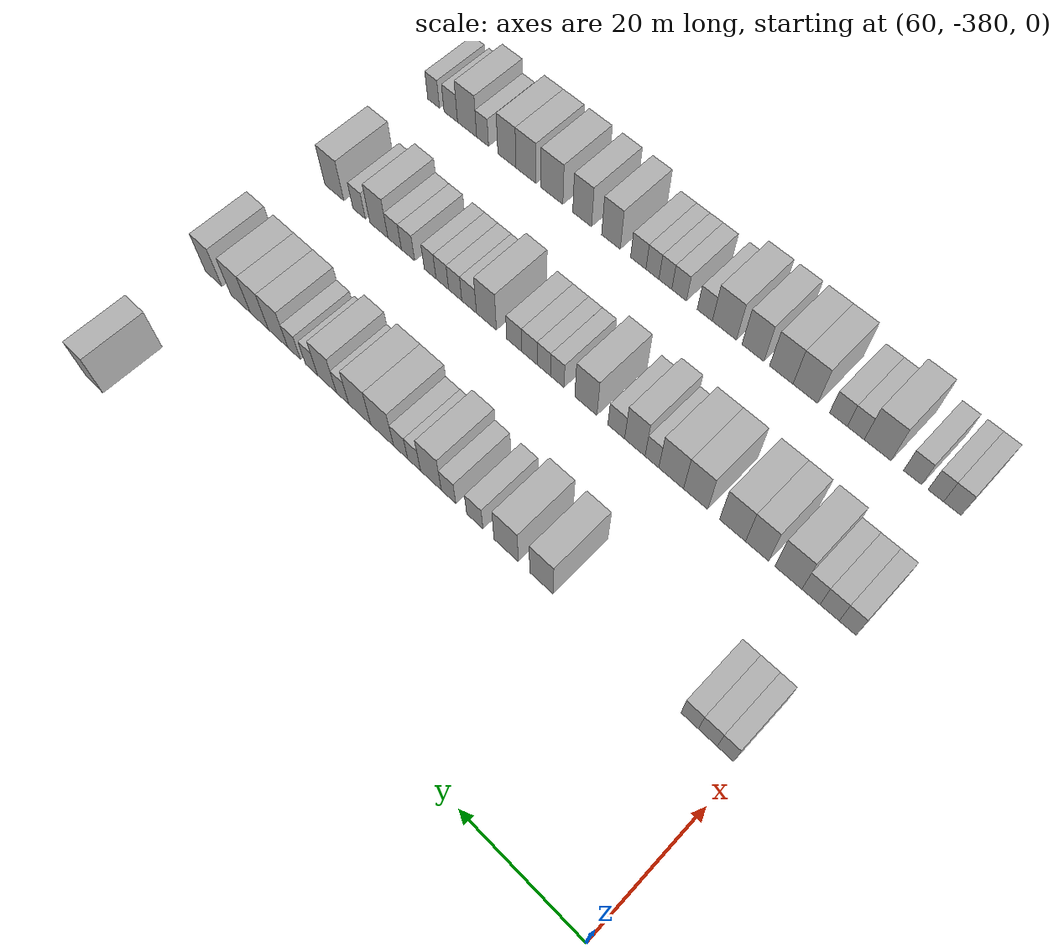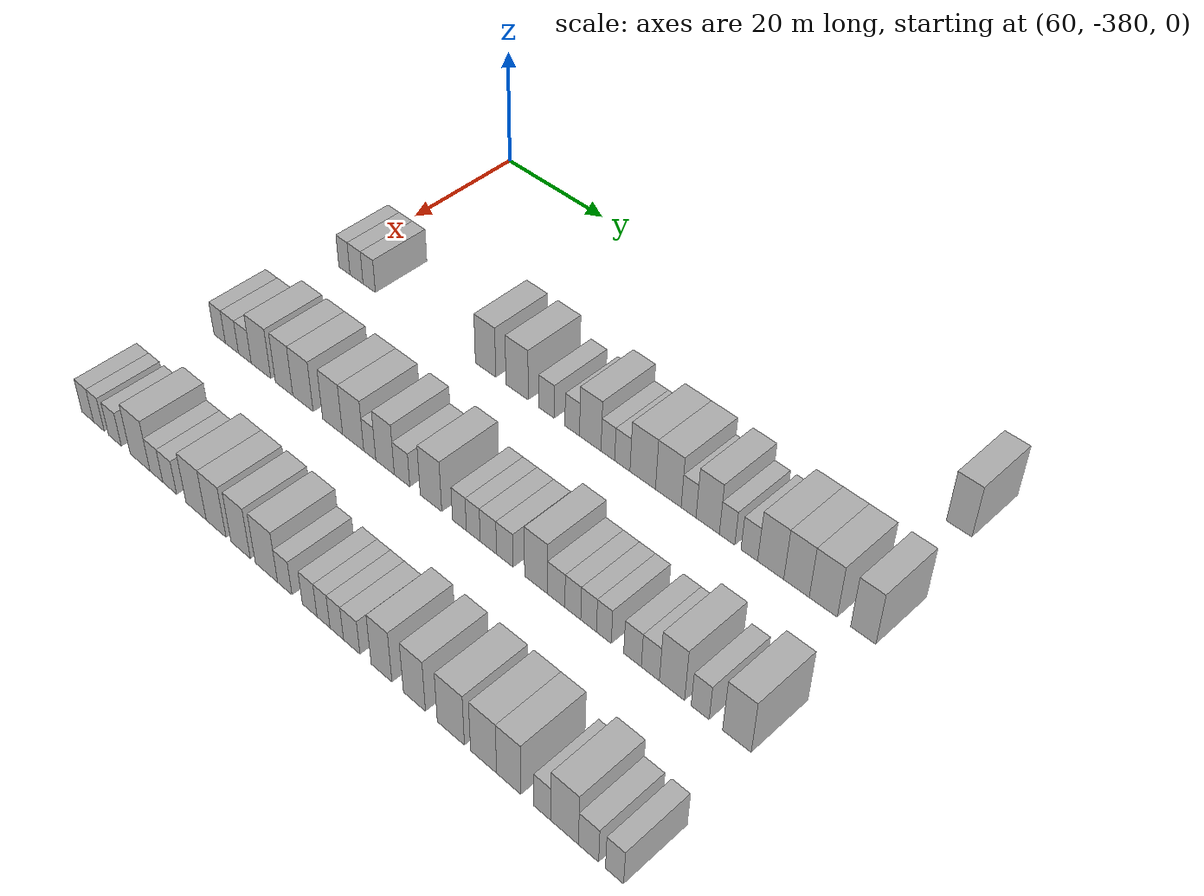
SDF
<sdf version="1.6">
 <world name="default">
  <model name="building_398">
   <static>1</static>
   <pose>69.0000 -284.9207 0 0.000000 0.000000 0.000000</pose>
   <link name="link">
    <pose>0 0 4.50 0 0 0</pose>
    <collision name="collision"><geometry><box><size>10.0000 3.8672 9.0000</size></box></geometry></collision>
    <visual name="visual">
     <cast_shadows>0</cast_shadows>
     <geometry><box><size>10.0000 3.8672 9.0000</size></box></geometry>
     <material>
      <script>
       <uri>model://HANNAS_wall/materials/scripts</uri>
       <uri>model://HANNAS_wall/materials/textures</uri>
       <name>vrc/HANNAS_wall</name>
      </script>
     </material>
    </visual>
   </link>
  </model>
  <model name="building_569">
   <static>1</static>
   <pose>91.0000 -377.7536 0 0.000000 0.000000 0.000000</pose>
   <link name="link">
    <pose>0 0 3.00 0 0 0</pose>
    <collision name="collision"><geometry><box><size>10.0000 2.4929 6.0000</size></box></geometry></collision>
    <visual name="visual">
     <cast_shadows>0</cast_shadows>
     <geometry><box><size>10.0000 2.4929 6.0000</size></box></geometry>
     <material>
      <script>
       <uri>model://HANNAS_wall/materials/scripts</uri>
       <uri>model://HANNAS_wall/materials/textures</uri>
       <name>vrc/HANNAS_wall</name>
      </script>
     </material>
    </visual>
   </link>
  </model>
  <model name="building_570">
   <static>1</static>
   <pose>91.0000 -375.0619 0 0.000000 0.000000 0.000000</pose>
   <link name="link">
    <pose>0 0 3.00 0 0 0</pose>
    <collision name="collision"><geometry><box><size>10.0000 2.8904 6.0000</size></box></geometry></collision>
    <visual name="visual">
     <cast_shadows>0</cast_shadows>
     <geometry><box><size>10.0000 2.8904 6.0000</size></box></geometry>
     <material>
      <script>
       <uri>model://HANNAS_wall/materials/scripts</uri>
       <uri>model://HANNAS_wall/materials/textures</uri>
       <name>vrc/HANNAS_wall</name>
      </script>
     </material>
    </visual>
   </link>
  </model>
  <model name="building_571">
   <static>1</static>
   <pose>91.0000 -372.2551 0 0.000000 0.000000 0.000000</pose>
   <link name="link">
    <pose>0 0 3.00 0 0 0</pose>
    <collision name="collision"><geometry><box><size>10.0000 2.7232 6.0000</size></box></geometry></collision>
    <visual name="visual">
     <cast_shadows>0</cast_shadows>
     <geometry><box><size>10.0000 2.7232 6.0000</size></box></geometry>
     <material>
      <script>
       <uri>model://HANNAS_wall/materials/scripts</uri>
       <uri>model://HANNAS_wall/materials/textures</uri>
       <name>vrc/HANNAS_wall</name>
      </script>
     </material>
    </visual>
   </link>
  </model>
  <model name="building_572">
   <static>1</static>
   <pose>91.0000 -347.8312 0 0.000000 0.000000 0.000000</pose>
   <link name="link">
    <pose>0 0 4.50 0 0 0</pose>
    <collision name="collision"><geometry><box><size>10.0000 4.0415 9.0000</size></box></geometry></collision>
    <visual name="visual">
     <cast_shadows>0</cast_shadows>
     <geometry><box><size>10.0000 4.0415 9.0000</size></box></geometry>
     <material>
      <script>
       <uri>model://HANNAS_wall/materials/scripts</uri>
       <uri>model://HANNAS_wall/materials/textures</uri>
       <name>vrc/HANNAS_wall</name>
      </script>
     </material>
    </visual>
   </link>
  </model>
  <model name="building_573">
   <static>1</static>
   <pose>91.0000 -341.6548 0 0.000000 0.000000 0.000000</pose>
   <link name="link">
    <pose>0 0 4.50 0 0 0</pose>
    <collision name="collision"><geometry><box><size>10.0000 4.3113 9.0000</size></box></geometry></collision>
    <visual name="visual">
     <cast_shadows>0</cast_shadows>
     <geometry><box><size>10.0000 4.3113 9.0000</size></box></geometry>
     <material>
      <script>
       <uri>model://HANNAS_wall/materials/scripts</uri>
       <uri>model://HANNAS_wall/materials/textures</uri>
       <name>vrc/HANNAS_wall</name>
      </script>
     </material>
    </visual>
   </link>
  </model>
  <model name="building_574">
   <static>1</static>
   <pose>91.0000 -336.0188 0 0.000000 0.000000 0.000000</pose>
   <link name="link">
    <pose>0 0 3.00 0 0 0</pose>
    <collision name="collision"><geometry><box><size>10.0000 2.9606 6.0000</size></box></geometry></collision>
    <visual name="visual">
     <cast_shadows>0</cast_shadows>
     <geometry><box><size>10.0000 2.9606 6.0000</size></box></geometry>
     <material>
      <script>
       <uri>model://HANNAS_wall/materials/scripts</uri>
       <uri>model://HANNAS_wall/materials/textures</uri>
       <name>vrc/HANNAS_wall</name>
      </script>
     </material>
    </visual>
   </link>
  </model>
  <model name="building_575">
   <static>1</static>
   <pose>91.0000 -331.1923 0 0.000000 0.000000 0.000000</pose>
   <link name="link">
    <pose>0 0 3.00 0 0 0</pose>
    <collision name="collision"><geometry><box><size>10.0000 2.6925 6.0000</size></box></geometry></collision>
    <visual name="visual">
     <cast_shadows>0</cast_shadows>
     <geometry><box><size>10.0000 2.6925 6.0000</size></box></geometry>
     <material>
      <script>
       <uri>model://HANNAS_wall/materials/scripts</uri>
       <uri>model://HANNAS_wall/materials/textures</uri>
       <name>vrc/HANNAS_wall</name>
      </script>
     </material>
    </visual>
   </link>
  </model>
  <model name="building_576">
   <static>1</static>
   <pose>91.0000 -327.8823 0 0.000000 0.000000 0.000000</pose>
   <link name="link">
    <pose>0 0 4.50 0 0 0</pose>
    <collision name="collision"><geometry><box><size>10.0000 3.9275 9.0000</size></box></geometry></collision>
    <visual name="visual">
     <cast_shadows>0</cast_shadows>
     <geometry><box><size>10.0000 3.9275 9.0000</size></box></geometry>
     <material>
      <script>
       <uri>model://HANNAS_wall/materials/scripts</uri>
       <uri>model://HANNAS_wall/materials/textures</uri>
       <name>vrc/HANNAS_wall</name>
      </script>
     </material>
    </visual>
   </link>
  </model>
  <model name="building_577">
   <static>1</static>
   <pose>91.0000 -324.6873 0 0.000000 0.000000 0.000000</pose>
   <link name="link">
    <pose>0 0 3.00 0 0 0</pose>
    <collision name="collision"><geometry><box><size>10.0000 2.4626 6.0000</size></box></geometry></collision>
    <visual name="visual">
     <cast_shadows>0</cast_shadows>
     <geometry><box><size>10.0000 2.4626 6.0000</size></box></geometry>
     <material>
      <script>
       <uri>model://HANNAS_wall/materials/scripts</uri>
       <uri>model://HANNAS_wall/materials/textures</uri>
       <name>vrc/HANNAS_wall</name>
      </script>
     </material>
    </visual>
   </link>
  </model>
  <model name="building_578">
   <static>1</static>
   <pose>91.0000 -322.1001 0 0.000000 0.000000 0.000000</pose>
   <link name="link">
    <pose>0 0 3.00 0 0 0</pose>
    <collision name="collision"><geometry><box><size>10.0000 2.7118 6.0000</size></box></geometry></collision>
    <visual name="visual">
     <cast_shadows>0</cast_shadows>
     <geometry><box><size>10.0000 2.7118 6.0000</size></box></geometry>
     <material>
      <script>
       <uri>model://HANNAS_wall/materials/scripts</uri>
       <uri>model://HANNAS_wall/materials/textures</uri>
       <name>vrc/HANNAS_wall</name>
      </script>
     </material>
    </visual>
   </link>
  </model>
  <model name="building_579">
   <static>1</static>
   <pose>91.0000 -318.5107 0 0.000000 0.000000 0.000000</pose>
   <link name="link">
    <pose>0 0 4.50 0 0 0</pose>
    <collision name="collision"><geometry><box><size>10.0000 4.4670 9.0000</size></box></geometry></collision>
    <visual name="visual">
     <cast_shadows>0</cast_shadows>
     <geometry><box><size>10.0000 4.4670 9.0000</size></box></geometry>
     <material>
      <script>
       <uri>model://HANNAS_wall/materials/scripts</uri>
       <uri>model://HANNAS_wall/materials/textures</uri>
       <name>vrc/HANNAS_wall</name>
      </script>
     </material>
    </visual>
   </link>
  </model>
  <model name="building_580">
   <static>1</static>
   <pose>91.0000 -314.0777 0 0.000000 0.000000 0.000000</pose>
   <link name="link">
    <pose>0 0 4.50 0 0 0</pose>
    <collision name="collision"><geometry><box><size>10.0000 4.3990 9.0000</size></box></geometry></collision>
    <visual name="visual">
     <cast_shadows>0</cast_shadows>
     <geometry><box><size>10.0000 4.3990 9.0000</size></box></geometry>
     <material>
      <script>
       <uri>model://HANNAS_wall/materials/scripts</uri>
       <uri>model://HANNAS_wall/materials/textures</uri>
       <name>vrc/HANNAS_wall</name>
      </script>
     </material>
    </visual>
   </link>
  </model>
  <model name="building_581">
   <static>1</static>
   <pose>91.0000 -310.6244 0 0.000000 0.000000 0.000000</pose>
   <link name="link">
    <pose>0 0 3.00 0 0 0</pose>
    <collision name="collision"><geometry><box><size>10.0000 2.5075 6.0000</size></box></geometry></collision>
    <visual name="visual">
     <cast_shadows>0</cast_shadows>
     <geometry><box><size>10.0000 2.5075 6.0000</size></box></geometry>
     <material>
      <script>
       <uri>model://HANNAS_wall/materials/scripts</uri>
       <uri>model://HANNAS_wall/materials/textures</uri>
       <name>vrc/HANNAS_wall</name>
      </script>
     </material>
    </visual>
   </link>
  </model>
  <model name="building_582">
   <static>1</static>
   <pose>91.0000 -307.4358 0 0.000000 0.000000 0.000000</pose>
   <link name="link">
    <pose>0 0 4.50 0 0 0</pose>
    <collision name="collision"><geometry><box><size>10.0000 3.8698 9.0000</size></box></geometry></collision>
    <visual name="visual">
     <cast_shadows>0</cast_shadows>
     <geometry><box><size>10.0000 3.8698 9.0000</size></box></geometry>
     <material>
      <script>
       <uri>model://HANNAS_wall/materials/scripts</uri>
       <uri>model://HANNAS_wall/materials/textures</uri>
       <name>vrc/HANNAS_wall</name>
      </script>
     </material>
    </visual>
   </link>
  </model>
  <model name="building_583">
   <static>1</static>
   <pose>91.0000 -304.2346 0 0.000000 0.000000 0.000000</pose>
   <link name="link">
    <pose>0 0 3.00 0 0 0</pose>
    <collision name="collision"><geometry><box><size>10.0000 2.5324 6.0000</size></box></geometry></collision>
    <visual name="visual">
     <cast_shadows>0</cast_shadows>
     <geometry><box><size>10.0000 2.5324 6.0000</size></box></geometry>
     <material>
      <script>
       <uri>model://HANNAS_wall/materials/scripts</uri>
       <uri>model://HANNAS_wall/materials/textures</uri>
       <name>vrc/HANNAS_wall</name>
      </script>
     </material>
    </visual>
   </link>
  </model>
  <model name="building_584">
   <static>1</static>
   <pose>91.0000 -300.6298 0 0.000000 0.000000 0.000000</pose>
   <link name="link">
    <pose>0 0 3.00 0 0 0</pose>
    <collision name="collision"><geometry><box><size>10.0000 2.6773 6.0000</size></box></geometry></collision>
    <visual name="visual">
     <cast_shadows>0</cast_shadows>
     <geometry><box><size>10.0000 2.6773 6.0000</size></box></geometry>
     <material>
      <script>
       <uri>model://HANNAS_wall/materials/scripts</uri>
       <uri>model://HANNAS_wall/materials/textures</uri>
       <name>vrc/HANNAS_wall</name>
      </script>
     </material>
    </visual>
   </link>
  </model>
  <model name="building_585">
   <static>1</static>
   <pose>91.0000 -297.2240 0 0.000000 0.000000 0.000000</pose>
   <link name="link">
    <pose>0 0 4.50 0 0 0</pose>
    <collision name="collision"><geometry><box><size>10.0000 4.1343 9.0000</size></box></geometry></collision>
    <visual name="visual">
     <cast_shadows>0</cast_shadows>
     <geometry><box><size>10.0000 4.1343 9.0000</size></box></geometry>
     <material>
      <script>
       <uri>model://HANNAS_wall/materials/scripts</uri>
       <uri>model://HANNAS_wall/materials/textures</uri>
       <name>vrc/HANNAS_wall</name>
      </script>
     </material>
    </visual>
   </link>
  </model>
  <model name="building_586">
   <static>1</static>
   <pose>91.0000 -293.1767 0 0.000000 0.000000 0.000000</pose>
   <link name="link">
    <pose>0 0 4.50 0 0 0</pose>
    <collision name="collision"><geometry><box><size>10.0000 3.9603 9.0000</size></box></geometry></collision>
    <visual name="visual">
     <cast_shadows>0</cast_shadows>
     <geometry><box><size>10.0000 3.9603 9.0000</size></box></geometry>
     <material>
      <script>
       <uri>model://HANNAS_wall/materials/scripts</uri>
       <uri>model://HANNAS_wall/materials/textures</uri>
       <name>vrc/HANNAS_wall</name>
      </script>
     </material>
    </visual>
   </link>
  </model>
  <model name="building_587">
   <static>1</static>
   <pose>91.0000 -289.0661 0 0.000000 0.000000 0.000000</pose>
   <link name="link">
    <pose>0 0 4.50 0 0 0</pose>
    <collision name="collision"><geometry><box><size>10.0000 4.2609 9.0000</size></box></geometry></collision>
    <visual name="visual">
     <cast_shadows>0</cast_shadows>
     <geometry><box><size>10.0000 4.2609 9.0000</size></box></geometry>
     <material>
      <script>
       <uri>model://HANNAS_wall/materials/scripts</uri>
       <uri>model://HANNAS_wall/materials/textures</uri>
       <name>vrc/HANNAS_wall</name>
      </script>
     </material>
    </visual>
   </link>
  </model>
  <model name="building_588">
   <static>1</static>
   <pose>91.0000 -283.0719 0 0.000000 0.000000 0.000000</pose>
   <link name="link">
    <pose>0 0 4.50 0 0 0</pose>
    <collision name="collision"><geometry><box><size>10.0000 3.7276 9.0000</size></box></geometry></collision>
    <visual name="visual">
     <cast_shadows>0</cast_shadows>
     <geometry><box><size>10.0000 3.7276 9.0000</size></box></geometry>
     <material>
      <script>
       <uri>model://HANNAS_wall/materials/scripts</uri>
       <uri>model://HANNAS_wall/materials/textures</uri>
       <name>vrc/HANNAS_wall</name>
      </script>
     </material>
    </visual>
   </link>
  </model>
  <model name="building_757">
   <static>1</static>
   <pose>113.0000 -378.7010 0 0.000000 0.000000 0.000000</pose>
   <link name="link">
    <pose>0 0 3.00 0 0 0</pose>
    <collision name="collision"><geometry><box><size>10.0000 2.5981 6.0000</size></box></geometry></collision>
    <visual name="visual">
     <cast_shadows>0</cast_shadows>
     <geometry><box><size>10.0000 2.5981 6.0000</size></box></geometry>
     <material>
      <script>
       <uri>model://HANNAS_wall/materials/scripts</uri>
       <uri>model://HANNAS_wall/materials/textures</uri>
       <name>vrc/HANNAS_wall</name>
      </script>
     </material>
    </visual>
   </link>
  </model>
  <model name="building_758">
   <static>1</static>
   <pose>113.0000 -375.9150 0 0.000000 0.000000 0.000000</pose>
   <link name="link">
    <pose>0 0 3.00 0 0 0</pose>
    <collision name="collision"><geometry><box><size>10.0000 2.9739 6.0000</size></box></geometry></collision>
    <visual name="visual">
     <cast_shadows>0</cast_shadows>
     <geometry><box><size>10.0000 2.9739 6.0000</size></box></geometry>
     <material>
      <script>
       <uri>model://HANNAS_wall/materials/scripts</uri>
       <uri>model://HANNAS_wall/materials/textures</uri>
       <name>vrc/HANNAS_wall</name>
      </script>
     </material>
    </visual>
   </link>
  </model>
  <model name="building_759">
   <static>1</static>
   <pose>113.0000 -373.0013 0 0.000000 0.000000 0.000000</pose>
   <link name="link">
    <pose>0 0 3.00 0 0 0</pose>
    <collision name="collision"><geometry><box><size>10.0000 2.8535 6.0000</size></box></geometry></collision>
    <visual name="visual">
     <cast_shadows>0</cast_shadows>
     <geometry><box><size>10.0000 2.8535 6.0000</size></box></geometry>
     <material>
      <script>
       <uri>model://HANNAS_wall/materials/scripts</uri>
       <uri>model://HANNAS_wall/materials/textures</uri>
       <name>vrc/HANNAS_wall</name>
      </script>
     </material>
    </visual>
   </link>
  </model>
  <model name="building_760">
   <static>1</static>
   <pose>113.0000 -369.4164 0 0.000000 0.000000 0.000000</pose>
   <link name="link">
    <pose>0 0 4.50 0 0 0</pose>
    <collision name="collision"><geometry><box><size>10.0000 4.3162 9.0000</size></box></geometry></collision>
    <visual name="visual">
     <cast_shadows>0</cast_shadows>
     <geometry><box><size>10.0000 4.3162 9.0000</size></box></geometry>
     <material>
      <script>
       <uri>model://HANNAS_wall/materials/scripts</uri>
       <uri>model://HANNAS_wall/materials/textures</uri>
       <name>vrc/HANNAS_wall</name>
      </script>
     </material>
    </visual>
   </link>
  </model>
  <model name="building_761">
   <static>1</static>
   <pose>113.0000 -364.3788 0 0.000000 0.000000 0.000000</pose>
   <link name="link">
    <pose>0 0 4.50 0 0 0</pose>
    <collision name="collision"><geometry><box><size>10.0000 3.7590 9.0000</size></box></geometry></collision>
    <visual name="visual">
     <cast_shadows>0</cast_shadows>
     <geometry><box><size>10.0000 3.7590 9.0000</size></box></geometry>
     <material>
      <script>
       <uri>model://HANNAS_wall/materials/scripts</uri>
       <uri>model://HANNAS_wall/materials/textures</uri>
       <name>vrc/HANNAS_wall</name>
      </script>
     </material>
    </visual>
   </link>
  </model>
  <model name="building_762">
   <static>1</static>
   <pose>113.0000 -360.3506 0 0.000000 0.000000 0.000000</pose>
   <link name="link">
    <pose>0 0 4.50 0 0 0</pose>
    <collision name="collision"><geometry><box><size>10.0000 4.2975 9.0000</size></box></geometry></collision>
    <visual name="visual">
     <cast_shadows>0</cast_shadows>
     <geometry><box><size>10.0000 4.2975 9.0000</size></box></geometry>
     <material>
      <script>
       <uri>model://HANNAS_wall/materials/scripts</uri>
       <uri>model://HANNAS_wall/materials/textures</uri>
       <name>vrc/HANNAS_wall</name>
      </script>
     </material>
    </visual>
   </link>
  </model>
  <model name="building_763">
   <static>1</static>
   <pose>113.0000 -354.1557 0 0.000000 0.000000 0.000000</pose>
   <link name="link">
    <pose>0 0 4.50 0 0 0</pose>
    <collision name="collision"><geometry><box><size>10.0000 4.0922 9.0000</size></box></geometry></collision>
    <visual name="visual">
     <cast_shadows>0</cast_shadows>
     <geometry><box><size>10.0000 4.0922 9.0000</size></box></geometry>
     <material>
      <script>
       <uri>model://HANNAS_wall/materials/scripts</uri>
       <uri>model://HANNAS_wall/materials/textures</uri>
       <name>vrc/HANNAS_wall</name>
      </script>
     </material>
    </visual>
   </link>
  </model>
  <model name="building_764">
   <static>1</static>
   <pose>113.0000 -349.9667 0 0.000000 0.000000 0.000000</pose>
   <link name="link">
    <pose>0 0 4.50 0 0 0</pose>
    <collision name="collision"><geometry><box><size>10.0000 4.2858 9.0000</size></box></geometry></collision>
    <visual name="visual">
     <cast_shadows>0</cast_shadows>
     <geometry><box><size>10.0000 4.2858 9.0000</size></box></geometry>
     <material>
      <script>
       <uri>model://HANNAS_wall/materials/scripts</uri>
       <uri>model://HANNAS_wall/materials/textures</uri>
       <name>vrc/HANNAS_wall</name>
      </script>
     </material>
    </visual>
   </link>
  </model>
  <model name="building_765">
   <static>1</static>
   <pose>113.0000 -346.6227 0 0.000000 0.000000 0.000000</pose>
   <link name="link">
    <pose>0 0 3.00 0 0 0</pose>
    <collision name="collision"><geometry><box><size>10.0000 2.4022 6.0000</size></box></geometry></collision>
    <visual name="visual">
     <cast_shadows>0</cast_shadows>
     <geometry><box><size>10.0000 2.4022 6.0000</size></box></geometry>
     <material>
      <script>
       <uri>model://HANNAS_wall/materials/scripts</uri>
       <uri>model://HANNAS_wall/materials/textures</uri>
       <name>vrc/HANNAS_wall</name>
      </script>
     </material>
    </visual>
   </link>
  </model>
  <model name="building_766">
   <static>1</static>
   <pose>113.0000 -343.6067 0 0.000000 0.000000 0.000000</pose>
   <link name="link">
    <pose>0 0 4.50 0 0 0</pose>
    <collision name="collision"><geometry><box><size>10.0000 3.6299 9.0000</size></box></geometry></collision>
    <visual name="visual">
     <cast_shadows>0</cast_shadows>
     <geometry><box><size>10.0000 3.6299 9.0000</size></box></geometry>
     <material>
      <script>
       <uri>model://HANNAS_wall/materials/scripts</uri>
       <uri>model://HANNAS_wall/materials/textures</uri>
       <name>vrc/HANNAS_wall</name>
      </script>
     </material>
    </visual>
   </link>
  </model>
  <model name="building_767">
   <static>1</static>
   <pose>113.0000 -340.2941 0 0.000000 0.000000 0.000000</pose>
   <link name="link">
    <pose>0 0 3.00 0 0 0</pose>
    <collision name="collision"><geometry><box><size>10.0000 2.9951 6.0000</size></box></geometry></collision>
    <visual name="visual">
     <cast_shadows>0</cast_shadows>
     <geometry><box><size>10.0000 2.9951 6.0000</size></box></geometry>
     <material>
      <script>
       <uri>model://HANNAS_wall/materials/scripts</uri>
       <uri>model://HANNAS_wall/materials/textures</uri>
       <name>vrc/HANNAS_wall</name>
      </script>
     </material>
    </visual>
   </link>
  </model>
  <model name="building_768">
   <static>1</static>
   <pose>113.0000 -334.7650 0 0.000000 0.000000 0.000000</pose>
   <link name="link">
    <pose>0 0 4.50 0 0 0</pose>
    <collision name="collision"><geometry><box><size>10.0000 4.0631 9.0000</size></box></geometry></collision>
    <visual name="visual">
     <cast_shadows>0</cast_shadows>
     <geometry><box><size>10.0000 4.0631 9.0000</size></box></geometry>
     <material>
      <script>
       <uri>model://HANNAS_wall/materials/scripts</uri>
       <uri>model://HANNAS_wall/materials/textures</uri>
       <name>vrc/HANNAS_wall</name>
      </script>
     </material>
    </visual>
   </link>
  </model>
  <model name="building_769">
   <static>1</static>
   <pose>113.0000 -329.4559 0 0.000000 0.000000 0.000000</pose>
   <link name="link">
    <pose>0 0 3.00 0 0 0</pose>
    <collision name="collision"><geometry><box><size>10.0000 2.5551 6.0000</size></box></geometry></collision>
    <visual name="visual">
     <cast_shadows>0</cast_shadows>
     <geometry><box><size>10.0000 2.5551 6.0000</size></box></geometry>
     <material>
      <script>
       <uri>model://HANNAS_wall/materials/scripts</uri>
       <uri>model://HANNAS_wall/materials/textures</uri>
       <name>vrc/HANNAS_wall</name>
      </script>
     </material>
    </visual>
   </link>
  </model>
  <model name="building_770">
   <static>1</static>
   <pose>113.0000 -326.9169 0 0.000000 0.000000 0.000000</pose>
   <link name="link">
    <pose>0 0 3.00 0 0 0</pose>
    <collision name="collision"><geometry><box><size>10.0000 2.5227 6.0000</size></box></geometry></collision>
    <visual name="visual">
     <cast_shadows>0</cast_shadows>
     <geometry><box><size>10.0000 2.5227 6.0000</size></box></geometry>
     <material>
      <script>
       <uri>model://HANNAS_wall/materials/scripts</uri>
       <uri>model://HANNAS_wall/materials/textures</uri>
       <name>vrc/HANNAS_wall</name>
      </script>
     </material>
    </visual>
   </link>
  </model>
  <model name="building_771">
   <static>1</static>
   <pose>113.0000 -324.1944 0 0.000000 0.000000 0.000000</pose>
   <link name="link">
    <pose>0 0 3.00 0 0 0</pose>
    <collision name="collision"><geometry><box><size>10.0000 2.9225 6.0000</size></box></geometry></collision>
    <visual name="visual">
     <cast_shadows>0</cast_shadows>
     <geometry><box><size>10.0000 2.9225 6.0000</size></box></geometry>
     <material>
      <script>
       <uri>model://HANNAS_wall/materials/scripts</uri>
       <uri>model://HANNAS_wall/materials/textures</uri>
       <name>vrc/HANNAS_wall</name>
      </script>
     </material>
    </visual>
   </link>
  </model>
  <model name="building_772">
   <static>1</static>
   <pose>113.0000 -321.2611 0 0.000000 0.000000 0.000000</pose>
   <link name="link">
    <pose>0 0 3.00 0 0 0</pose>
    <collision name="collision"><geometry><box><size>10.0000 2.9441 6.0000</size></box></geometry></collision>
    <visual name="visual">
     <cast_shadows>0</cast_shadows>
     <geometry><box><size>10.0000 2.9441 6.0000</size></box></geometry>
     <material>
      <script>
       <uri>model://HANNAS_wall/materials/scripts</uri>
       <uri>model://HANNAS_wall/materials/textures</uri>
       <name>vrc/HANNAS_wall</name>
      </script>
     </material>
    </visual>
   </link>
  </model>
  <model name="building_773">
   <static>1</static>
   <pose>113.0000 -315.8130 0 0.000000 0.000000 0.000000</pose>
   <link name="link">
    <pose>0 0 4.50 0 0 0</pose>
    <collision name="collision"><geometry><box><size>10.0000 3.9521 9.0000</size></box></geometry></collision>
    <visual name="visual">
     <cast_shadows>0</cast_shadows>
     <geometry><box><size>10.0000 3.9521 9.0000</size></box></geometry>
     <material>
      <script>
       <uri>model://HANNAS_wall/materials/scripts</uri>
       <uri>model://HANNAS_wall/materials/textures</uri>
       <name>vrc/HANNAS_wall</name>
      </script>
     </material>
    </visual>
   </link>
  </model>
  <model name="building_774">
   <static>1</static>
   <pose>113.0000 -312.3692 0 0.000000 0.000000 0.000000</pose>
   <link name="link">
    <pose>0 0 3.00 0 0 0</pose>
    <collision name="collision"><geometry><box><size>10.0000 2.9354 6.0000</size></box></geometry></collision>
    <visual name="visual">
     <cast_shadows>0</cast_shadows>
     <geometry><box><size>10.0000 2.9354 6.0000</size></box></geometry>
     <material>
      <script>
       <uri>model://HANNAS_wall/materials/scripts</uri>
       <uri>model://HANNAS_wall/materials/textures</uri>
       <name>vrc/HANNAS_wall</name>
      </script>
     </material>
    </visual>
   </link>
  </model>
  <model name="building_775">
   <static>1</static>
   <pose>113.0000 -309.5719 0 0.000000 0.000000 0.000000</pose>
   <link name="link">
    <pose>0 0 3.00 0 0 0</pose>
    <collision name="collision"><geometry><box><size>10.0000 2.6594 6.0000</size></box></geometry></collision>
    <visual name="visual">
     <cast_shadows>0</cast_shadows>
     <geometry><box><size>10.0000 2.6594 6.0000</size></box></geometry>
     <material>
      <script>
       <uri>model://HANNAS_wall/materials/scripts</uri>
       <uri>model://HANNAS_wall/materials/textures</uri>
       <name>vrc/HANNAS_wall</name>
      </script>
     </material>
    </visual>
   </link>
  </model>
  <model name="building_776">
   <static>1</static>
   <pose>113.0000 -306.9479 0 0.000000 0.000000 0.000000</pose>
   <link name="link">
    <pose>0 0 3.00 0 0 0</pose>
    <collision name="collision"><geometry><box><size>10.0000 2.5886 6.0000</size></box></geometry></collision>
    <visual name="visual">
     <cast_shadows>0</cast_shadows>
     <geometry><box><size>10.0000 2.5886 6.0000</size></box></geometry>
     <material>
      <script>
       <uri>model://HANNAS_wall/materials/scripts</uri>
       <uri>model://HANNAS_wall/materials/textures</uri>
       <name>vrc/HANNAS_wall</name>
      </script>
     </material>
    </visual>
   </link>
  </model>
  <model name="building_777">
   <static>1</static>
   <pose>113.0000 -304.4424 0 0.000000 0.000000 0.000000</pose>
   <link name="link">
    <pose>0 0 3.00 0 0 0</pose>
    <collision name="collision"><geometry><box><size>10.0000 2.4224 6.0000</size></box></geometry></collision>
    <visual name="visual">
     <cast_shadows>0</cast_shadows>
     <geometry><box><size>10.0000 2.4224 6.0000</size></box></geometry>
     <material>
      <script>
       <uri>model://HANNAS_wall/materials/scripts</uri>
       <uri>model://HANNAS_wall/materials/textures</uri>
       <name>vrc/HANNAS_wall</name>
      </script>
     </material>
    </visual>
   </link>
  </model>
  <model name="building_778">
   <static>1</static>
   <pose>113.0000 -299.8309 0 0.000000 0.000000 0.000000</pose>
   <link name="link">
    <pose>0 0 3.00 0 0 0</pose>
    <collision name="collision"><geometry><box><size>10.0000 2.8004 6.0000</size></box></geometry></collision>
    <visual name="visual">
     <cast_shadows>0</cast_shadows>
     <geometry><box><size>10.0000 2.8004 6.0000</size></box></geometry>
     <material>
      <script>
       <uri>model://HANNAS_wall/materials/scripts</uri>
       <uri>model://HANNAS_wall/materials/textures</uri>
       <name>vrc/HANNAS_wall</name>
      </script>
     </material>
    </visual>
   </link>
  </model>
  <model name="building_779">
   <static>1</static>
   <pose>113.0000 -297.0095 0 0.000000 0.000000 0.000000</pose>
   <link name="link">
    <pose>0 0 3.00 0 0 0</pose>
    <collision name="collision"><geometry><box><size>10.0000 2.8425 6.0000</size></box></geometry></collision>
    <visual name="visual">
     <cast_shadows>0</cast_shadows>
     <geometry><box><size>10.0000 2.8425 6.0000</size></box></geometry>
     <material>
      <script>
       <uri>model://HANNAS_wall/materials/scripts</uri>
       <uri>model://HANNAS_wall/materials/textures</uri>
       <name>vrc/HANNAS_wall</name>
      </script>
     </material>
    </visual>
   </link>
  </model>
  <model name="building_780">
   <static>1</static>
   <pose>113.0000 -293.6457 0 0.000000 0.000000 0.000000</pose>
   <link name="link">
    <pose>0 0 4.50 0 0 0</pose>
    <collision name="collision"><geometry><box><size>10.0000 3.8850 9.0000</size></box></geometry></collision>
    <visual name="visual">
     <cast_shadows>0</cast_shadows>
     <geometry><box><size>10.0000 3.8850 9.0000</size></box></geometry>
     <material>
      <script>
       <uri>model://HANNAS_wall/materials/scripts</uri>
       <uri>model://HANNAS_wall/materials/textures</uri>
       <name>vrc/HANNAS_wall</name>
      </script>
     </material>
    </visual>
   </link>
  </model>
  <model name="building_781">
   <static>1</static>
   <pose>113.0000 -289.3415 0 0.000000 0.000000 0.000000</pose>
   <link name="link">
    <pose>0 0 3.00 0 0 0</pose>
    <collision name="collision"><geometry><box><size>10.0000 2.7235 6.0000</size></box></geometry></collision>
    <visual name="visual">
     <cast_shadows>0</cast_shadows>
     <geometry><box><size>10.0000 2.7235 6.0000</size></box></geometry>
     <material>
      <script>
       <uri>model://HANNAS_wall/materials/scripts</uri>
       <uri>model://HANNAS_wall/materials/textures</uri>
       <name>vrc/HANNAS_wall</name>
      </script>
     </material>
    </visual>
   </link>
  </model>
  <model name="building_782">
   <static>1</static>
   <pose>113.0000 -283.8762 0 0.000000 0.000000 0.000000</pose>
   <link name="link">
    <pose>0 0 4.50 0 0 0</pose>
    <collision name="collision"><geometry><box><size>10.0000 4.2071 9.0000</size></box></geometry></collision>
    <visual name="visual">
     <cast_shadows>0</cast_shadows>
     <geometry><box><size>10.0000 4.2071 9.0000</size></box></geometry>
     <material>
      <script>
       <uri>model://HANNAS_wall/materials/scripts</uri>
       <uri>model://HANNAS_wall/materials/textures</uri>
       <name>vrc/HANNAS_wall</name>
      </script>
     </material>
    </visual>
   </link>
  </model>
  <model name="building_953">
   <static>1</static>
   <pose>135.0000 -378.6330 0 0.000000 0.000000 0.000000</pose>
   <link name="link">
    <pose>0 0 3.00 0 0 0</pose>
    <collision name="collision"><geometry><box><size>10.0000 2.7341 6.0000</size></box></geometry></collision>
    <visual name="visual">
     <cast_shadows>0</cast_shadows>
     <geometry><box><size>10.0000 2.7341 6.0000</size></box></geometry>
     <material>
      <script>
       <uri>model://HANNAS_wall/materials/scripts</uri>
       <uri>model://HANNAS_wall/materials/textures</uri>
       <name>vrc/HANNAS_wall</name>
      </script>
     </material>
    </visual>
   </link>
  </model>
  <model name="building_954">
   <static>1</static>
   <pose>135.0000 -376.0462 0 0.000000 0.000000 0.000000</pose>
   <link name="link">
    <pose>0 0 3.00 0 0 0</pose>
    <collision name="collision"><geometry><box><size>10.0000 2.4394 6.0000</size></box></geometry></collision>
    <visual name="visual">
     <cast_shadows>0</cast_shadows>
     <geometry><box><size>10.0000 2.4394 6.0000</size></box></geometry>
     <material>
      <script>
       <uri>model://HANNAS_wall/materials/scripts</uri>
       <uri>model://HANNAS_wall/materials/textures</uri>
       <name>vrc/HANNAS_wall</name>
      </script>
     </material>
    </visual>
   </link>
  </model>
  <model name="building_955">
   <static>1</static>
   <pose>135.0000 -372.3743 0 0.000000 0.000000 0.000000</pose>
   <link name="link">
    <pose>0 0 3.00 0 0 0</pose>
    <collision name="collision"><geometry><box><size>10.0000 2.9046 6.0000</size></box></geometry></collision>
    <visual name="visual">
     <cast_shadows>0</cast_shadows>
     <geometry><box><size>10.0000 2.9046 6.0000</size></box></geometry>
     <material>
      <script>
       <uri>model://HANNAS_wall/materials/scripts</uri>
       <uri>model://HANNAS_wall/materials/textures</uri>
       <name>vrc/HANNAS_wall</name>
      </script>
     </material>
    </visual>
   </link>
  </model>
  <model name="building_956">
   <static>1</static>
   <pose>135.0000 -366.7272 0 0.000000 0.000000 0.000000</pose>
   <link name="link">
    <pose>0 0 4.50 0 0 0</pose>
    <collision name="collision"><geometry><box><size>10.0000 4.3895 9.0000</size></box></geometry></collision>
    <visual name="visual">
     <cast_shadows>0</cast_shadows>
     <geometry><box><size>10.0000 4.3895 9.0000</size></box></geometry>
     <material>
      <script>
       <uri>model://HANNAS_wall/materials/scripts</uri>
       <uri>model://HANNAS_wall/materials/textures</uri>
       <name>vrc/HANNAS_wall</name>
      </script>
     </material>
    </visual>
   </link>
  </model>
  <model name="building_957">
   <static>1</static>
   <pose>135.0000 -363.1391 0 0.000000 0.000000 0.000000</pose>
   <link name="link">
    <pose>0 0 3.00 0 0 0</pose>
    <collision name="collision"><geometry><box><size>10.0000 2.7866 6.0000</size></box></geometry></collision>
    <visual name="visual">
     <cast_shadows>0</cast_shadows>
     <geometry><box><size>10.0000 2.7866 6.0000</size></box></geometry>
     <material>
      <script>
       <uri>model://HANNAS_wall/materials/scripts</uri>
       <uri>model://HANNAS_wall/materials/textures</uri>
       <name>vrc/HANNAS_wall</name>
      </script>
     </material>
    </visual>
   </link>
  </model>
  <model name="building_958">
   <static>1</static>
   <pose>135.0000 -360.2605 0 0.000000 0.000000 0.000000</pose>
   <link name="link">
    <pose>0 0 3.00 0 0 0</pose>
    <collision name="collision"><geometry><box><size>10.0000 2.9706 6.0000</size></box></geometry></collision>
    <visual name="visual">
     <cast_shadows>0</cast_shadows>
     <geometry><box><size>10.0000 2.9706 6.0000</size></box></geometry>
     <material>
      <script>
       <uri>model://HANNAS_wall/materials/scripts</uri>
       <uri>model://HANNAS_wall/materials/textures</uri>
       <name>vrc/HANNAS_wall</name>
      </script>
     </material>
    </visual>
   </link>
  </model>
  <model name="building_959">
   <static>1</static>
   <pose>135.0000 -354.6610 0 0.000000 0.000000 0.000000</pose>
   <link name="link">
    <pose>0 0 4.50 0 0 0</pose>
    <collision name="collision"><geometry><box><size>10.0000 4.2284 9.0000</size></box></geometry></collision>
    <visual name="visual">
     <cast_shadows>0</cast_shadows>
     <geometry><box><size>10.0000 4.2284 9.0000</size></box></geometry>
     <material>
      <script>
       <uri>model://HANNAS_wall/materials/scripts</uri>
       <uri>model://HANNAS_wall/materials/textures</uri>
       <name>vrc/HANNAS_wall</name>
      </script>
     </material>
    </visual>
   </link>
  </model>
  <model name="building_960">
   <static>1</static>
   <pose>135.0000 -350.5113 0 0.000000 0.000000 0.000000</pose>
   <link name="link">
    <pose>0 0 4.50 0 0 0</pose>
    <collision name="collision"><geometry><box><size>10.0000 4.0711 9.0000</size></box></geometry></collision>
    <visual name="visual">
     <cast_shadows>0</cast_shadows>
     <geometry><box><size>10.0000 4.0711 9.0000</size></box></geometry>
     <material>
      <script>
       <uri>model://HANNAS_wall/materials/scripts</uri>
       <uri>model://HANNAS_wall/materials/textures</uri>
       <name>vrc/HANNAS_wall</name>
      </script>
     </material>
    </visual>
   </link>
  </model>
  <model name="building_961">
   <static>1</static>
   <pose>135.0000 -345.5378 0 0.000000 0.000000 0.000000</pose>
   <link name="link">
    <pose>0 0 4.50 0 0 0</pose>
    <collision name="collision"><geometry><box><size>10.0000 3.8760 9.0000</size></box></geometry></collision>
    <visual name="visual">
     <cast_shadows>0</cast_shadows>
     <geometry><box><size>10.0000 3.8760 9.0000</size></box></geometry>
     <material>
      <script>
       <uri>model://HANNAS_wall/materials/scripts</uri>
       <uri>model://HANNAS_wall/materials/textures</uri>
       <name>vrc/HANNAS_wall</name>
      </script>
     </material>
    </visual>
   </link>
  </model>
  <model name="building_962">
   <static>1</static>
   <pose>135.0000 -340.4216 0 0.000000 0.000000 0.000000</pose>
   <link name="link">
    <pose>0 0 4.50 0 0 0</pose>
    <collision name="collision"><geometry><box><size>10.0000 4.3563 9.0000</size></box></geometry></collision>
    <visual name="visual">
     <cast_shadows>0</cast_shadows>
     <geometry><box><size>10.0000 4.3563 9.0000</size></box></geometry>
     <material>
      <script>
       <uri>model://HANNAS_wall/materials/scripts</uri>
       <uri>model://HANNAS_wall/materials/textures</uri>
       <name>vrc/HANNAS_wall</name>
      </script>
     </material>
    </visual>
   </link>
  </model>
  <model name="building_963">
   <static>1</static>
   <pose>135.0000 -336.8643 0 0.000000 0.000000 0.000000</pose>
   <link name="link">
    <pose>0 0 3.00 0 0 0</pose>
    <collision name="collision"><geometry><box><size>10.0000 2.7585 6.0000</size></box></geometry></collision>
    <visual name="visual">
     <cast_shadows>0</cast_shadows>
     <geometry><box><size>10.0000 2.7585 6.0000</size></box></geometry>
     <material>
      <script>
       <uri>model://HANNAS_wall/materials/scripts</uri>
       <uri>model://HANNAS_wall/materials/textures</uri>
       <name>vrc/HANNAS_wall</name>
      </script>
     </material>
    </visual>
   </link>
  </model>
  <model name="building_964">
   <static>1</static>
   <pose>135.0000 -332.1116 0 0.000000 0.000000 0.000000</pose>
   <link name="link">
    <pose>0 0 3.00 0 0 0</pose>
    <collision name="collision"><geometry><box><size>10.0000 2.7468 6.0000</size></box></geometry></collision>
    <visual name="visual">
     <cast_shadows>0</cast_shadows>
     <geometry><box><size>10.0000 2.7468 6.0000</size></box></geometry>
     <material>
      <script>
       <uri>model://HANNAS_wall/materials/scripts</uri>
       <uri>model://HANNAS_wall/materials/textures</uri>
       <name>vrc/HANNAS_wall</name>
      </script>
     </material>
    </visual>
   </link>
  </model>
  <model name="building_965">
   <static>1</static>
   <pose>135.0000 -329.5305 0 0.000000 0.000000 0.000000</pose>
   <link name="link">
    <pose>0 0 3.00 0 0 0</pose>
    <collision name="collision"><geometry><box><size>10.0000 2.4155 6.0000</size></box></geometry></collision>
    <visual name="visual">
     <cast_shadows>0</cast_shadows>
     <geometry><box><size>10.0000 2.4155 6.0000</size></box></geometry>
     <material>
      <script>
       <uri>model://HANNAS_wall/materials/scripts</uri>
       <uri>model://HANNAS_wall/materials/textures</uri>
       <name>vrc/HANNAS_wall</name>
      </script>
     </material>
    </visual>
   </link>
  </model>
  <model name="building_966">
   <static>1</static>
   <pose>135.0000 -327.0856 0 0.000000 0.000000 0.000000</pose>
   <link name="link">
    <pose>0 0 3.00 0 0 0</pose>
    <collision name="collision"><geometry><box><size>10.0000 2.4741 6.0000</size></box></geometry></collision>
    <visual name="visual">
     <cast_shadows>0</cast_shadows>
     <geometry><box><size>10.0000 2.4741 6.0000</size></box></geometry>
     <material>
      <script>
       <uri>model://HANNAS_wall/materials/scripts</uri>
       <uri>model://HANNAS_wall/materials/textures</uri>
       <name>vrc/HANNAS_wall</name>
      </script>
     </material>
    </visual>
   </link>
  </model>
  <model name="building_967">
   <static>1</static>
   <pose>135.0000 -324.3709 0 0.000000 0.000000 0.000000</pose>
   <link name="link">
    <pose>0 0 3.00 0 0 0</pose>
    <collision name="collision"><geometry><box><size>10.0000 2.9553 6.0000</size></box></geometry></collision>
    <visual name="visual">
     <cast_shadows>0</cast_shadows>
     <geometry><box><size>10.0000 2.9553 6.0000</size></box></geometry>
     <material>
      <script>
       <uri>model://HANNAS_wall/materials/scripts</uri>
       <uri>model://HANNAS_wall/materials/textures</uri>
       <name>vrc/HANNAS_wall</name>
      </script>
     </material>
    </visual>
   </link>
  </model>
  <model name="building_968">
   <static>1</static>
   <pose>135.0000 -319.0656 0 0.000000 0.000000 0.000000</pose>
   <link name="link">
    <pose>0 0 4.50 0 0 0</pose>
    <collision name="collision"><geometry><box><size>10.0000 3.6554 9.0000</size></box></geometry></collision>
    <visual name="visual">
     <cast_shadows>0</cast_shadows>
     <geometry><box><size>10.0000 3.6554 9.0000</size></box></geometry>
     <material>
      <script>
       <uri>model://HANNAS_wall/materials/scripts</uri>
       <uri>model://HANNAS_wall/materials/textures</uri>
       <name>vrc/HANNAS_wall</name>
      </script>
     </material>
    </visual>
   </link>
  </model>
  <model name="building_969">
   <static>1</static>
   <pose>135.0000 -313.3573 0 0.000000 0.000000 0.000000</pose>
   <link name="link">
    <pose>0 0 4.50 0 0 0</pose>
    <collision name="collision"><geometry><box><size>10.0000 3.7611 9.0000</size></box></geometry></collision>
    <visual name="visual">
     <cast_shadows>0</cast_shadows>
     <geometry><box><size>10.0000 3.7611 9.0000</size></box></geometry>
     <material>
      <script>
       <uri>model://HANNAS_wall/materials/scripts</uri>
       <uri>model://HANNAS_wall/materials/textures</uri>
       <name>vrc/HANNAS_wall</name>
      </script>
     </material>
    </visual>
   </link>
  </model>
  <model name="building_970">
   <static>1</static>
   <pose>135.0000 -307.2320 0 0.000000 0.000000 0.000000</pose>
   <link name="link">
    <pose>0 0 4.50 0 0 0</pose>
    <collision name="collision"><geometry><box><size>10.0000 4.4895 9.0000</size></box></geometry></collision>
    <visual name="visual">
     <cast_shadows>0</cast_shadows>
     <geometry><box><size>10.0000 4.4895 9.0000</size></box></geometry>
     <material>
      <script>
       <uri>model://HANNAS_wall/materials/scripts</uri>
       <uri>model://HANNAS_wall/materials/textures</uri>
       <name>vrc/HANNAS_wall</name>
      </script>
     </material>
    </visual>
   </link>
  </model>
  <model name="building_971">
   <static>1</static>
   <pose>135.0000 -301.8923 0 0.000000 0.000000 0.000000</pose>
   <link name="link">
    <pose>0 0 4.50 0 0 0</pose>
    <collision name="collision"><geometry><box><size>10.0000 4.1899 9.0000</size></box></geometry></collision>
    <visual name="visual">
     <cast_shadows>0</cast_shadows>
     <geometry><box><size>10.0000 4.1899 9.0000</size></box></geometry>
     <material>
      <script>
       <uri>model://HANNAS_wall/materials/scripts</uri>
       <uri>model://HANNAS_wall/materials/textures</uri>
       <name>vrc/HANNAS_wall</name>
      </script>
     </material>
    </visual>
   </link>
  </model>
  <model name="building_972">
   <static>1</static>
   <pose>135.0000 -297.8807 0 0.000000 0.000000 0.000000</pose>
   <link name="link">
    <pose>0 0 4.50 0 0 0</pose>
    <collision name="collision"><geometry><box><size>10.0000 3.8332 9.0000</size></box></geometry></collision>
    <visual name="visual">
     <cast_shadows>0</cast_shadows>
     <geometry><box><size>10.0000 3.8332 9.0000</size></box></geometry>
     <material>
      <script>
       <uri>model://HANNAS_wall/materials/scripts</uri>
       <uri>model://HANNAS_wall/materials/textures</uri>
       <name>vrc/HANNAS_wall</name>
      </script>
     </material>
    </visual>
   </link>
  </model>
  <model name="building_973">
   <static>1</static>
   <pose>135.0000 -292.6807 0 0.000000 0.000000 0.000000</pose>
   <link name="link">
    <pose>0 0 3.00 0 0 0</pose>
    <collision name="collision"><geometry><box><size>10.0000 2.5667 6.0000</size></box></geometry></collision>
    <visual name="visual">
     <cast_shadows>0</cast_shadows>
     <geometry><box><size>10.0000 2.5667 6.0000</size></box></geometry>
     <material>
      <script>
       <uri>model://HANNAS_wall/materials/scripts</uri>
       <uri>model://HANNAS_wall/materials/textures</uri>
       <name>vrc/HANNAS_wall</name>
      </script>
     </material>
    </visual>
   </link>
  </model>
  <model name="building_974">
   <static>1</static>
   <pose>135.0000 -289.3140 0 0.000000 0.000000 0.000000</pose>
   <link name="link">
    <pose>0 0 4.50 0 0 0</pose>
    <collision name="collision"><geometry><box><size>10.0000 4.1669 9.0000</size></box></geometry></collision>
    <visual name="visual">
     <cast_shadows>0</cast_shadows>
     <geometry><box><size>10.0000 4.1669 9.0000</size></box></geometry>
     <material>
      <script>
       <uri>model://HANNAS_wall/materials/scripts</uri>
       <uri>model://HANNAS_wall/materials/textures</uri>
       <name>vrc/HANNAS_wall</name>
      </script>
     </material>
    </visual>
   </link>
  </model>
  <model name="building_975">
   <static>1</static>
   <pose>135.0000 -285.7379 0 0.000000 0.000000 0.000000</pose>
   <link name="link">
    <pose>0 0 3.00 0 0 0</pose>
    <collision name="collision"><geometry><box><size>10.0000 2.9854 6.0000</size></box></geometry></collision>
    <visual name="visual">
     <cast_shadows>0</cast_shadows>
     <geometry><box><size>10.0000 2.9854 6.0000</size></box></geometry>
     <material>
      <script>
       <uri>model://HANNAS_wall/materials/scripts</uri>
       <uri>model://HANNAS_wall/materials/textures</uri>
       <name>vrc/HANNAS_wall</name>
      </script>
     </material>
    </visual>
   </link>
  </model>
  <model name="building_976">
   <static>1</static>
   <pose>135.0000 -281.9353 0 0.000000 0.000000 0.000000</pose>
   <link name="link">
    <pose>0 0 3.00 0 0 0</pose>
    <collision name="collision"><geometry><box><size>10.0000 2.6197 6.0000</size></box></geometry></collision>
    <visual name="visual">
     <cast_shadows>0</cast_shadows>
     <geometry><box><size>10.0000 2.6197 6.0000</size></box></geometry>
     <material>
      <script>
       <uri>model://HANNAS_wall/materials/scripts</uri>
       <uri>model://HANNAS_wall/materials/textures</uri>
       <name>vrc/HANNAS_wall</name>
      </script>
     </material>
    </visual>
   </link>
  </model>
 </world>
</sdf>
